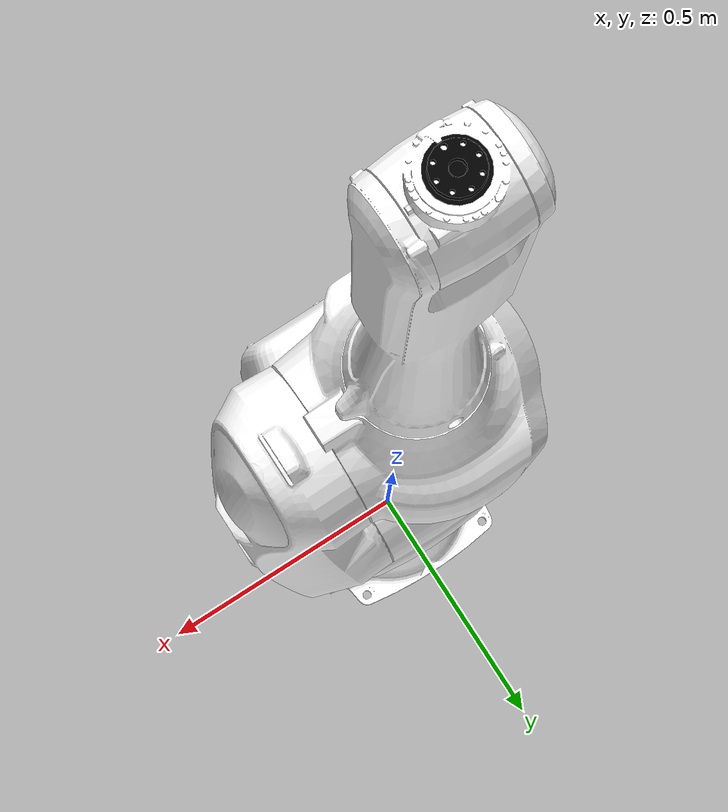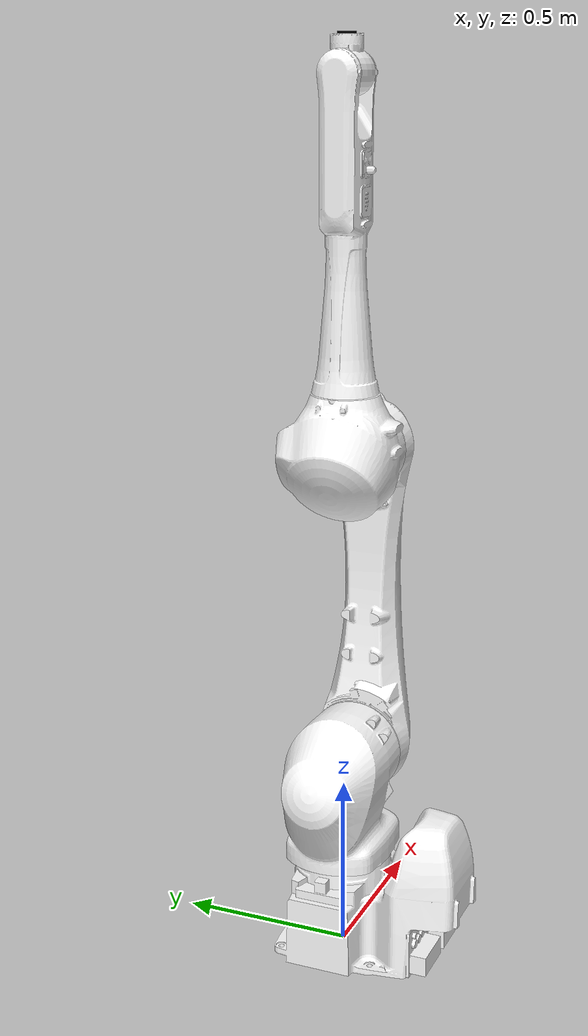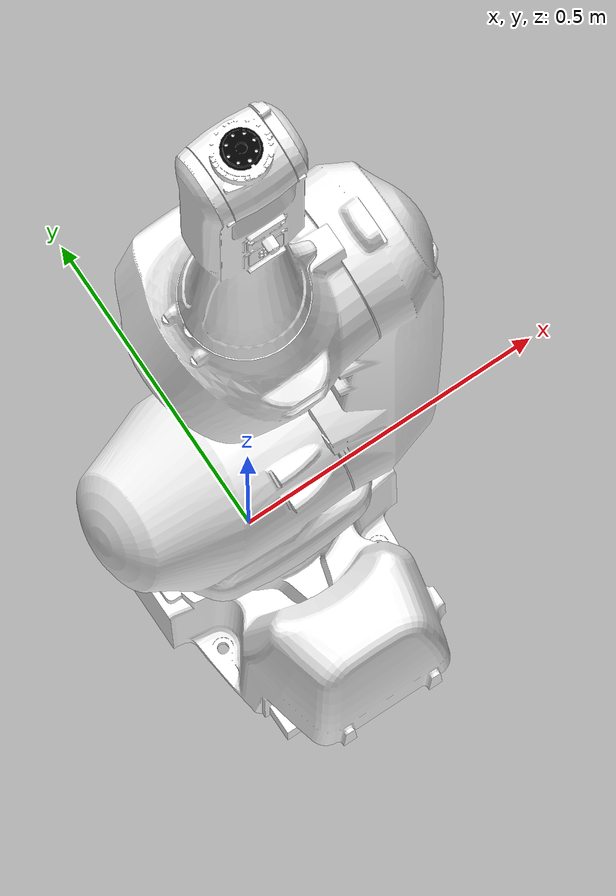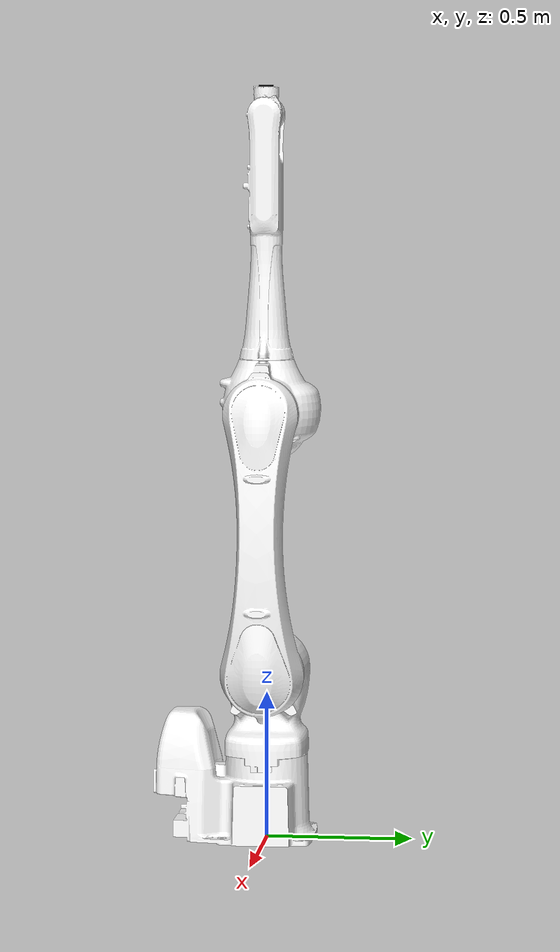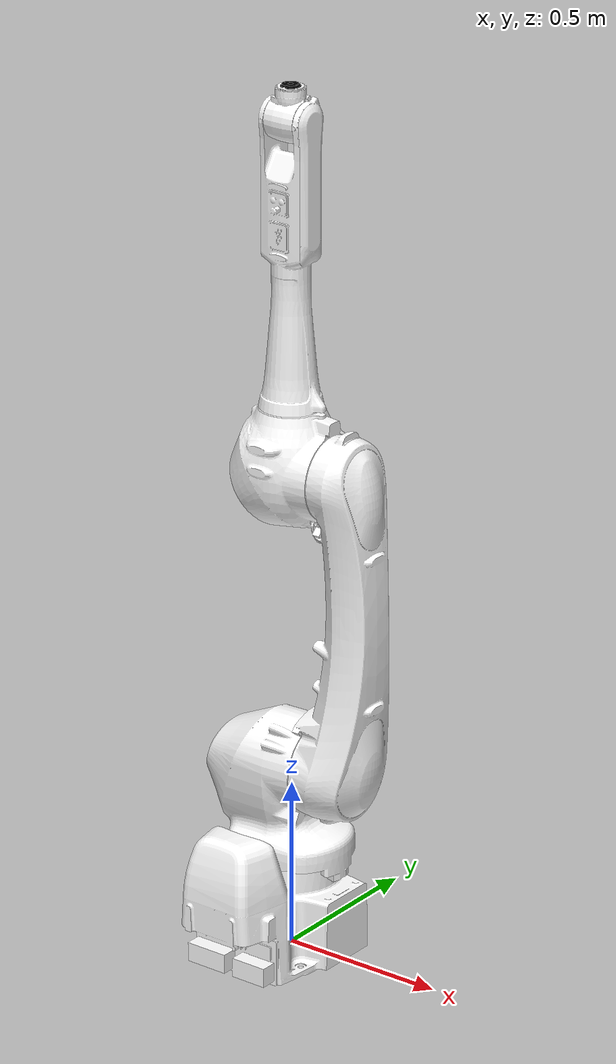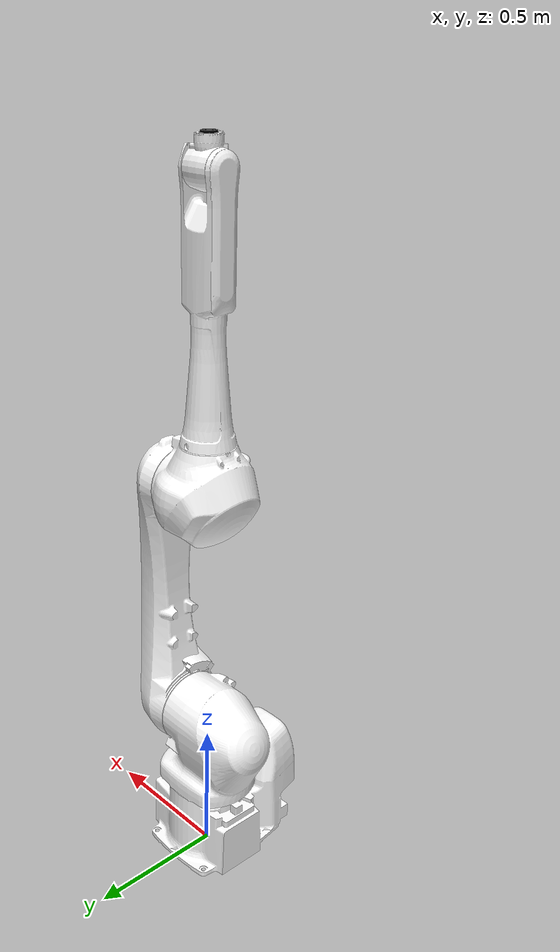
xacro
<?xml version="1.0" ?>
<robot name="khi_rs025n" xmlns:xacro="http://ros.org/wiki/xacro">
  <xacro:include filename="$(find khi_rs_description)/urdf/rs025n_macro.xacro"/>

  <!-- instantiate rs025n -->
  <xacro:khi_rs025n prefix="" />

  <!-- Fix rs025n to world -->

  <link name="world"/>

  <joint name="world2base" type="fixed">
    <parent link="world"/>
    <child link="base_link"/>
    <origin rpy="0 0 0" xyz="0 0 0"/>
  </joint>
</robot>

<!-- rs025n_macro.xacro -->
<robot xmlns:xacro="http://ros.org/wiki/xacro">
  <xacro:macro name="khi_rs025n" params="prefix">

    <xacro:include filename="$(find khi_rs_description)/urdf/rs.transmission.xacro" />
    <xacro:include filename="$(find khi_rs_description)/urdf/common.gazebo.xacro" />

    <!-- link rviz colors -->
    <material name="White">
      <color rgba="1 1 1 1"/>
    </material>

    <material name="Black">
      <color rgba="0 0 0 1"/>
    </material>

    <!-- DH parameters -->
    <xacro:property name="dh_j1_j2_roty" value="${radians(-90)}"/>
    <xacro:property name="dh_j3_j4_roty" value="${radians( 90)}"/>
    <xacro:property name="dh_j4_j5_roty" value="${radians(-90)}"/>
    <xacro:property name="dh_j5_j6_roty" value="${radians( 90)}"/>

    <!-- link mass [kg] -->
    <xacro:property name="j0_mass" value="84.124"/>
    <xacro:property name="j1_mass" value="73.318"/>
    <xacro:property name="j2_mass" value="59.038"/>
    <xacro:property name="j3_mass" value="33.226"/>
    <xacro:property name="j4_mass" value="16.236"/>
    <xacro:property name="j5_mass" value="4.058"/>
    <xacro:property name="j6_mass" value="0.0001"/>

    <!-- link lengths [m] -->
    <xacro:property name="j0_length" value="0.58"/>
    <xacro:property name="j1_length" value="0.0"/>
    <xacro:property name="j2_length" value="0.885"/>
    <xacro:property name="j3_length" value="0.15"/>
    <xacro:property name="j4_length" value="0.85"/>
    <xacro:property name="j5_length" value="0.100"/>

    <!-- joint limits [rad] -->
    <xacro:property name="j1_lower_limit" value="${radians(-180)}"/>
    <xacro:property name="j1_upper_limit" value="${radians( 180)}"/>
    <xacro:property name="j2_lower_limit" value="${radians(-100)}"/>
    <xacro:property name="j2_upper_limit" value="${radians( 131)}"/>
    <xacro:property name="j3_lower_limit" value="${radians(-161)}"/>
    <xacro:property name="j3_upper_limit" value="${radians( 145)}"/>
    <xacro:property name="j4_lower_limit" value="${radians(-270)}"/>
    <xacro:property name="j4_upper_limit" value="${radians( 270)}"/>
    <xacro:property name="j5_lower_limit" value="${radians(-145)}"/>
    <xacro:property name="j5_upper_limit" value="${radians( 145)}"/>
    <xacro:property name="j6_lower_limit" value="${radians(-360)}"/>
    <xacro:property name="j6_upper_limit" value="${radians( 360)}"/>

    <!-- joint verocity limits [rad/s] -->
    <xacro:property name="j1_velocity_limit" value="${radians( 215)}"/>
    <xacro:property name="j2_velocity_limit" value="${radians( 215)}"/>
    <xacro:property name="j3_velocity_limit" value="${radians( 270)}"/>
    <xacro:property name="j4_velocity_limit" value="${radians( 420)}"/>
    <xacro:property name="j5_velocity_limit" value="${radians( 420)}"/>
    <xacro:property name="j6_velocity_limit" value="${radians( 780)}"/>

    <!-- link inertial(TODO : set correct link inertial )-->
    <xacro:macro name="default_inertial" params="mass">
      <inertial>
        <mass value="${mass}" />
        <inertia ixx="1.0" ixy="0.0" ixz="0.0" iyy="1.0" iyz="0.0" izz="1.0" />
      </inertial>
    </xacro:macro>

    <!-- rs025n start -->

    <!-- Link 0 -->
    <link name="${prefix}base_link">
      <visual>
        <geometry>
          <mesh filename="package://khi_rs_description/meshes/RS025N_J0.stl"/>
        </geometry>
        <material name="White"/>
        <origin rpy="0 0 0" xyz="0 0 0"/>
      </visual>
      <collision>
        <geometry>
          <mesh filename="package://khi_rs_description/meshes/RS025N_J0.stl"/>
        </geometry>
        <material name="White"/>
        <origin rpy="0 0 0" xyz="0 0 0"/>
      </collision>
      <xacro:default_inertial mass="${j0_mass}"/>
    </link>

    <!-- Link 1 -->
    <joint name="${prefix}joint1" type="revolute">
      <axis xyz="0 0 -1" rpy="0 0 0" />
      <limit effort="1000.0" lower="${j1_lower_limit}" upper="${j1_upper_limit}" velocity="${j1_velocity_limit}"/>
      <origin xyz="0 0 ${j0_length}" rpy="0 0 0" />
      <parent link="${prefix}base_link"/>
      <child link="${prefix}link1"/>
      <dynamics damping="0.0" friction="0.0"/>
    </joint>

    <link name="${prefix}link1">
      <visual>
        <geometry>
          <mesh filename="package://khi_rs_description/meshes/RS025N_J1.stl"/>
        </geometry>
        <material name="White"/>
        <origin rpy="0 0 0" xyz="0 0 0"/>
      </visual>
      <collision>
        <geometry>
          <mesh filename="package://khi_rs_description/meshes/RS025N_J1.stl"/>
        </geometry>
        <material name="White"/>
        <origin rpy="0 0 0" xyz="0 0 0"/>
      </collision>
      <xacro:default_inertial mass="${j1_mass}"/>
    </link>

    <!-- Link 2 -->
    <joint name="${prefix}joint2" type="revolute">
      <axis xyz="0 0 1" rpy="0 0 0" />
      <limit effort="1000.0" lower="${j2_lower_limit}" upper="${j2_upper_limit}" velocity="${j2_velocity_limit}"/>
      <origin xyz="0 0 ${j1_length}" rpy="0 ${dh_j1_j2_roty} 0" />
      <parent link="${prefix}link1"/>
      <child link="${prefix}link2"/>
      <dynamics damping="0.0" friction="0.0"/>
    </joint>

    <link name="${prefix}link2">
      <visual>
        <geometry>
          <mesh filename="package://khi_rs_description/meshes/RS025N_J2.stl"/>
        </geometry>
        <material name="White"/>
        <origin xyz="0 0 0" rpy="0 ${dh_j1_j2_roty*-1} 0"/>
      </visual>
      <collision>
        <geometry>
          <mesh filename="package://khi_rs_description/meshes/RS025N_J2.stl"/>
        </geometry>
        <material name="White"/>
        <origin xyz="0 0 0" rpy="0 ${dh_j1_j2_roty*-1} 0"/>
      </collision>
      <xacro:default_inertial mass="0${j2_mass}"/>
    </link>

    <!-- Link 3 -->
    <joint name="${prefix}joint3" type="revolute">
      <axis xyz="0 0 -1" rpy="0 0 0" />
      <limit effort="1000.0" lower="${j3_lower_limit}" upper="${j3_upper_limit}" velocity="${j3_velocity_limit}"/>
      <origin xyz="${j2_length} 0 0" rpy="0 0 0" />
      <parent link="${prefix}link2"/>
      <child link="${prefix}link3"/>
      <dynamics damping="0.0" friction="0.0"/>
    </joint>

    <link name="${prefix}link3">
      <visual>
        <geometry>
          <mesh filename="package://khi_rs_description/meshes/RS025N_J3.stl"/>
        </geometry>
        <material name="White"/>
        <origin xyz="0 0 0" rpy="0 ${dh_j1_j2_roty*-1} 0"/>
      </visual>
      <collision>
        <geometry>
          <mesh filename="package://khi_rs_description/meshes/RS025N_J3.stl"/>
        </geometry>
        <material name="White"/>
        <origin xyz="0 0 0" rpy="0 ${dh_j1_j2_roty*-1} 0"/>
      </collision>
      <xacro:default_inertial mass="${j3_mass}"/>
    </link>

    <!-- Link 4 -->
    <joint name="${prefix}joint4" type="revolute">
      <axis xyz="0 0 1" rpy="0 0 0" />
      <limit effort="1000.0" lower="${j4_lower_limit}" upper="${j4_upper_limit}" velocity="${j4_velocity_limit}"/>
      <origin xyz="${j3_length} 0 0" rpy="0 ${dh_j3_j4_roty} 0" />
      <parent link="${prefix}link3"/>
      <child link="${prefix}link4"/>
      <dynamics damping="0.0" friction="0.0"/>
    </joint>

    <link name="${prefix}link4">
      <visual>
        <geometry>
          <mesh filename="package://khi_rs_description/meshes/RS025N_J4.stl"/>
        </geometry>
        <material name="White"/>
        <origin xyz="0 0 ${j4_length}" rpy="0 0 0"/>
      </visual>
      <collision>
        <geometry>
          <mesh filename="package://khi_rs_description/meshes/RS025N_J4.stl"/>
        </geometry>
        <material name="White"/>
        <origin xyz="0 0 ${j4_length}" rpy="0 0 0"/>
      </collision>
      <xacro:default_inertial mass="${j4_mass}"/>
    </link>

    <!-- Link 5 -->
    <joint name="${prefix}joint5" type="revolute">
      <axis xyz="0 0 -1" rpy="0 0 0" />
      <limit effort="1000.0" lower="${j5_lower_limit}" upper="${j5_upper_limit}" velocity="${j5_velocity_limit}"/>
      <origin xyz="0 0 ${j4_length}" rpy="0 ${dh_j4_j5_roty} 0" />
      <parent link="${prefix}link4"/>
      <child link="${prefix}link5"/>
      <dynamics damping="0.0" friction="0.0"/>
    </joint>

    <link name="${prefix}link5">
      <visual>
        <geometry>
          <mesh filename="package://khi_rs_description/meshes/RS025N_J5.stl"/>
        </geometry>
        <material name="White"/>
        <origin xyz="0 0 0" rpy="0 ${dh_j4_j5_roty*-1} 0"/>
      </visual>
      <collision>
        <geometry>
          <mesh filename="package://khi_rs_description/meshes/RS025N_J5.stl"/>
        </geometry>
        <material name="White"/>
        <origin xyz="0 0 0" rpy="0 ${dh_j4_j5_roty*-1} 0"/>
      </collision>
      <xacro:default_inertial mass="${j5_mass}"/>
    </link>

    <!-- Link 6 -->
    <joint name="${prefix}joint6" type="revolute">
      <axis xyz="0 0 1" rpy="0 0 0" />
      <limit effort="1000.0" lower="${j6_lower_limit}" upper="${j6_upper_limit}" velocity="${j6_velocity_limit}"/>
      <origin xyz="${j5_length} 0 0" rpy="0 ${dh_j5_j6_roty} 0" />
      <parent link="${prefix}link5"/>
      <child link="${prefix}link6"/>
      <dynamics damping="0.0" friction="0.0"/>
    </joint>

    <link name="${prefix}link6">
      <visual>
        <geometry>
          <mesh filename="package://khi_rs_description/meshes/RS025N_J6.stl"/>
        </geometry>
        <material name="Black"/>
        <origin xyz="0 0 0" rpy="0 0 0"/>
      </visual>
      <collision>
        <geometry>
          <mesh filename="package://khi_rs_description/meshes/RS025N_J6.stl"/>
        </geometry>
        <material name="Black"/>
        <origin xyz="0 0 0" rpy="0 0 0"/>
      </collision>
      <xacro:default_inertial mass="${j6_mass}"/>
    </link>
  </xacro:macro>
</robot>
